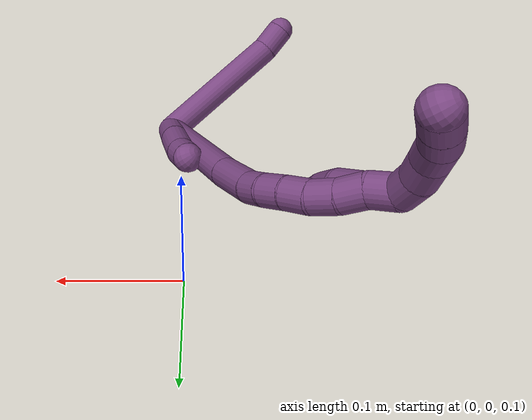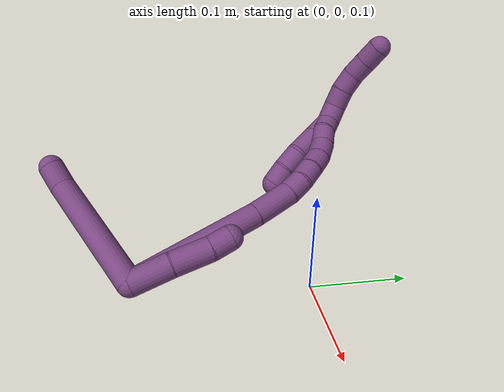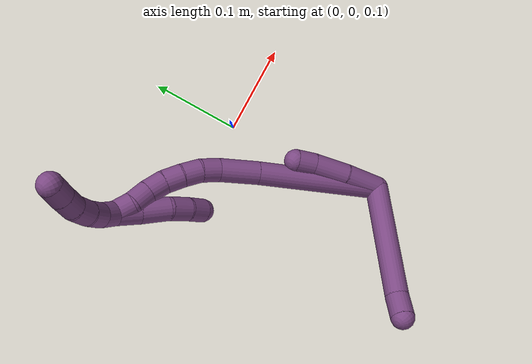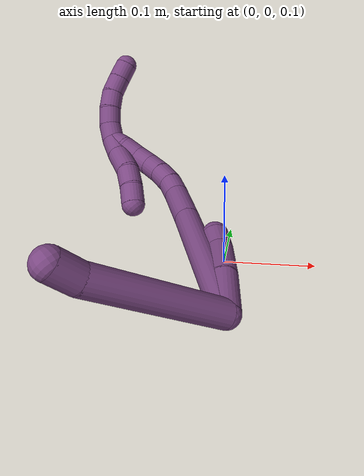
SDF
<sdf version="1.7">
 <world name="default">
  <model name="20">
   <static>0</static>
   <link name="20">
    <collision name="collision-cylinder-e_1_2_8">
     <pose>-0.015778 -0.04536 0.040289 0.844539 -0.254429 -0.114809</pose>
     <geometry><cylinder><radius>0.0125</radius><length>0.125375</length></cylinder></geometry>
     <surface>
      <friction><ode><mu>1.16</mu><mu2>1.16</mu2><slip1>0</slip1><slip2>0</slip2></ode></friction>
      <contact><ode><kp>1e+06</kp><kd>1</kd><max_vel>0</max_vel><min_depth>0.001</min_depth></ode></contact>
     </surface>
    </collision>
    <visual name="visual-cylinder-e_1_2_8">
     <pose>-0.015778 -0.04536 0.040289 0.844539 -0.254429 -0.114809</pose>
     <geometry><cylinder><radius>0.0125</radius><length>0.125375</length></cylinder></geometry>
     <material><ambient>0.478431 0.278431 0.509804 1</ambient></material>
    </visual>
    <collision name="collision-cylinder-e_2_8_6">
     <pose>-0.032081 -0.099523 0.089171 0.797456 -0.042634 -0.017964</pose>
     <geometry><cylinder><radius>0.0125</radius><length>0.024625</length></cylinder></geometry>
     <surface>
      <friction><ode><mu>1.16</mu><mu2>1.16</mu2><slip1>0</slip1><slip2>0</slip2></ode></friction>
      <contact><ode><kp>1e+06</kp><kd>1</kd><max_vel>0</max_vel><min_depth>0.001</min_depth></ode></contact>
     </surface>
    </collision>
    <visual name="visual-cylinder-e_2_8_6">
     <pose>-0.032081 -0.099523 0.089171 0.797456 -0.042634 -0.017964</pose>
     <geometry><cylinder><radius>0.0125</radius><length>0.024625</length></cylinder></geometry>
     <material><ambient>0.478431 0.278431 0.509804 1</ambient></material>
    </visual>
    <collision name="collision-cylinder-e_1_2_9">
     <pose>0.004118 0.015977 0.012022 -0.925754 0.203104 -0.101619</pose>
     <geometry><cylinder><radius>0.0125</radius><length>0.040829</length></cylinder></geometry>
     <surface>
      <friction><ode><mu>1.16</mu><mu2>1.16</mu2><slip1>0</slip1><slip2>0</slip2></ode></friction>
      <contact><ode><kp>1e+06</kp><kd>1</kd><max_vel>0</max_vel><min_depth>0.001</min_depth></ode></contact>
     </surface>
    </collision>
    <visual name="visual-cylinder-e_1_2_9">
     <pose>0.004118 0.015977 0.012022 -0.925754 0.203104 -0.101619</pose>
     <geometry><cylinder><radius>0.0125</radius><length>0.040829</length></cylinder></geometry>
     <material><ambient>0.478431 0.278431 0.509804 1</ambient></material>
    </visual>
    <collision name="collision-cylinder-e_2_9_10">
     <pose>0.010261 0.047518 0.035054 -0.955053 0.105814 -0.054793</pose>
     <geometry><cylinder><radius>0.0125</radius><length>0.038344</length></cylinder></geometry>
     <surface>
      <friction><ode><mu>1.16</mu><mu2>1.16</mu2><slip1>0</slip1><slip2>0</slip2></ode></friction>
      <contact><ode><kp>1e+06</kp><kd>1</kd><max_vel>0</max_vel><min_depth>0.001</min_depth></ode></contact>
     </surface>
    </collision>
    <visual name="visual-cylinder-e_2_9_10">
     <pose>0.010261 0.047518 0.035054 -0.955053 0.105814 -0.054793</pose>
     <geometry><cylinder><radius>0.0125</radius><length>0.038344</length></cylinder></geometry>
     <material><ambient>0.478431 0.278431 0.509804 1</ambient></material>
    </visual>
    <collision name="collision-cylinder-e_3_10_5">
     <pose>0.013167 0.070641 0.053173 -0.816179 0.084807 -0.036685</pose>
     <geometry><cylinder><radius>0.0125</radius><length>0.020827</length></cylinder></geometry>
     <surface>
      <friction><ode><mu>1.16</mu><mu2>1.16</mu2><slip1>0</slip1><slip2>0</slip2></ode></friction>
      <contact><ode><kp>1e+06</kp><kd>1</kd><max_vel>0</max_vel><min_depth>0.001</min_depth></ode></contact>
     </surface>
    </collision>
    <visual name="visual-cylinder-e_3_10_5">
     <pose>0.013167 0.070641 0.053173 -0.816179 0.084807 -0.036685</pose>
     <geometry><cylinder><radius>0.0125</radius><length>0.020827</length></cylinder></geometry>
     <material><ambient>0.478431 0.278431 0.509804 1</ambient></material>
    </visual>
    <collision name="collision-cylinder-e_1_2_11">
     <pose>-0.001407 0.049886 0.046693 -0.818447 -0.020585 0.008928</pose>
     <geometry><cylinder><radius>0.0125</radius><length>0.136687</length></cylinder></geometry>
     <surface>
      <friction><ode><mu>1.16</mu><mu2>1.16</mu2><slip1>0</slip1><slip2>0</slip2></ode></friction>
      <contact><ode><kp>1e+06</kp><kd>1</kd><max_vel>0</max_vel><min_depth>0.001</min_depth></ode></contact>
     </surface>
    </collision>
    <visual name="visual-cylinder-e_1_2_11">
     <pose>-0.001407 0.049886 0.046693 -0.818447 -0.020585 0.008928</pose>
     <geometry><cylinder><radius>0.0125</radius><length>0.136687</length></cylinder></geometry>
     <material><ambient>0.478431 0.278431 0.509804 1</ambient></material>
    </visual>
    <collision name="collision-cylinder-e_2_11_12">
     <pose>-0.003062 0.114515 0.109131 -0.752562 -0.01153 0.004556</pose>
     <geometry><cylinder><radius>0.0125</radius><length>0.043142</length></cylinder></geometry>
     <surface>
      <friction><ode><mu>1.16</mu><mu2>1.16</mu2><slip1>0</slip1><slip2>0</slip2></ode></friction>
      <contact><ode><kp>1e+06</kp><kd>1</kd><max_vel>0</max_vel><min_depth>0.001</min_depth></ode></contact>
     </surface>
    </collision>
    <visual name="visual-cylinder-e_2_11_12">
     <pose>-0.003062 0.114515 0.109131 -0.752562 -0.01153 0.004556</pose>
     <geometry><cylinder><radius>0.0125</radius><length>0.043142</length></cylinder></geometry>
     <material><ambient>0.478431 0.278431 0.509804 1</ambient></material>
    </visual>
    <collision name="collision-cylinder-e_3_12_13">
     <pose>-0.003142 0.134701 0.133352 -0.57081 0.016802 -0.00493</pose>
     <geometry><cylinder><radius>0.0125</radius><length>0.020151</length></cylinder></geometry>
     <surface>
      <friction><ode><mu>1.16</mu><mu2>1.16</mu2><slip1>0</slip1><slip2>0</slip2></ode></friction>
      <contact><ode><kp>1e+06</kp><kd>1</kd><max_vel>0</max_vel><min_depth>0.001</min_depth></ode></contact>
     </surface>
    </collision>
    <visual name="visual-cylinder-e_3_12_13">
     <pose>-0.003142 0.134701 0.133352 -0.57081 0.016802 -0.00493</pose>
     <geometry><cylinder><radius>0.0125</radius><length>0.020151</length></cylinder></geometry>
     <material><ambient>0.478431 0.278431 0.509804 1</ambient></material>
    </visual>
    <collision name="collision-cylinder-e_4_13_14">
     <pose>-0.004628 0.14438 0.150738 -0.443787 -0.166304 0.037602</pose>
     <geometry><cylinder><radius>0.0125</radius><length>0.020004</length></cylinder></geometry>
     <surface>
      <friction><ode><mu>1.16</mu><mu2>1.16</mu2><slip1>0</slip1><slip2>0</slip2></ode></friction>
      <contact><ode><kp>1e+06</kp><kd>1</kd><max_vel>0</max_vel><min_depth>0.001</min_depth></ode></contact>
     </surface>
    </collision>
    <visual name="visual-cylinder-e_4_13_14">
     <pose>-0.004628 0.14438 0.150738 -0.443787 -0.166304 0.037602</pose>
     <geometry><cylinder><radius>0.0125</radius><length>0.020004</length></cylinder></geometry>
     <material><ambient>0.478431 0.278431 0.509804 1</ambient></material>
    </visual>
    <collision name="collision-cylinder-e_5_14_15">
     <pose>-0.009044 0.152616 0.168392 -0.429065 -0.279479 0.061275</pose>
     <geometry><cylinder><radius>0.0125</radius><length>0.020012</length></cylinder></geometry>
     <surface>
      <friction><ode><mu>1.16</mu><mu2>1.16</mu2><slip1>0</slip1><slip2>0</slip2></ode></friction>
      <contact><ode><kp>1e+06</kp><kd>1</kd><max_vel>0</max_vel><min_depth>0.001</min_depth></ode></contact>
     </surface>
    </collision>
    <visual name="visual-cylinder-e_5_14_15">
     <pose>-0.009044 0.152616 0.168392 -0.429065 -0.279479 0.061275</pose>
     <geometry><cylinder><radius>0.0125</radius><length>0.020012</length></cylinder></geometry>
     <material><ambient>0.478431 0.278431 0.509804 1</ambient></material>
    </visual>
    <collision name="collision-cylinder-e_6_15_16">
     <pose>-0.014741 0.158536 0.186503 -0.202062 -0.29809 0.030443</pose>
     <geometry><cylinder><radius>0.0125</radius><length>0.020001</length></cylinder></geometry>
     <surface>
      <friction><ode><mu>1.16</mu><mu2>1.16</mu2><slip1>0</slip1><slip2>0</slip2></ode></friction>
      <contact><ode><kp>1e+06</kp><kd>1</kd><max_vel>0</max_vel><min_depth>0.001</min_depth></ode></contact>
     </surface>
    </collision>
    <visual name="visual-cylinder-e_6_15_16">
     <pose>-0.014741 0.158536 0.186503 -0.202062 -0.29809 0.030443</pose>
     <geometry><cylinder><radius>0.0125</radius><length>0.020001</length></cylinder></geometry>
     <material><ambient>0.478431 0.278431 0.509804 1</ambient></material>
    </visual>
    <collision name="collision-cylinder-e_7_16_17">
     <pose>-0.020008 0.160658 0.205592 -0.020952 -0.235138 0.002475</pose>
     <geometry><cylinder><radius>0.0125</radius><length>0.020002</length></cylinder></geometry>
     <surface>
      <friction><ode><mu>1.16</mu><mu2>1.16</mu2><slip1>0</slip1><slip2>0</slip2></ode></friction>
      <contact><ode><kp>1e+06</kp><kd>1</kd><max_vel>0</max_vel><min_depth>0.001</min_depth></ode></contact>
     </surface>
    </collision>
    <visual name="visual-cylinder-e_7_16_17">
     <pose>-0.020008 0.160658 0.205592 -0.020952 -0.235138 0.002475</pose>
     <geometry><cylinder><radius>0.0125</radius><length>0.020002</length></cylinder></geometry>
     <material><ambient>0.478431 0.278431 0.509804 1</ambient></material>
    </visual>
    <collision name="collision-cylinder-e_8_17_1">
     <pose>-0.025946 0.163674 0.224208 -0.306229 -0.369019 0.057587</pose>
     <geometry><cylinder><radius>0.0125</radius><length>0.020001</length></cylinder></geometry>
     <surface>
      <friction><ode><mu>1.16</mu><mu2>1.16</mu2><slip1>0</slip1><slip2>0</slip2></ode></friction>
      <contact><ode><kp>1e+06</kp><kd>1</kd><max_vel>0</max_vel><min_depth>0.001</min_depth></ode></contact>
     </surface>
    </collision>
    <visual name="visual-cylinder-e_8_17_1">
     <pose>-0.025946 0.163674 0.224208 -0.306229 -0.369019 0.057587</pose>
     <geometry><cylinder><radius>0.0125</radius><length>0.020001</length></cylinder></geometry>
     <material><ambient>0.478431 0.278431 0.509804 1</ambient></material>
    </visual>
    <collision name="collision-cylinder-e_1_1_18">
     <pose>-0.025422 0.167871 0.242103 -0.152693 0.425862 -0.033075</pose>
     <geometry><cylinder><radius>0.0125</radius><length>0.02</length></cylinder></geometry>
     <surface>
      <friction><ode><mu>1.16</mu><mu2>1.16</mu2><slip1>0</slip1><slip2>0</slip2></ode></friction>
      <contact><ode><kp>1e+06</kp><kd>1</kd><max_vel>0</max_vel><min_depth>0.001</min_depth></ode></contact>
     </surface>
    </collision>
    <visual name="visual-cylinder-e_1_1_18">
     <pose>-0.025422 0.167871 0.242103 -0.152693 0.425862 -0.033075</pose>
     <geometry><cylinder><radius>0.0125</radius><length>0.02</length></cylinder></geometry>
     <material><ambient>0.478431 0.278431 0.509804 1</ambient></material>
    </visual>
    <collision name="collision-cylinder-e_2_18_19">
     <pose>-0.015094 0.170358 0.258874 -0.140939 0.66835 -0.049005</pose>
     <geometry><cylinder><radius>0.0125</radius><length>0.02</length></cylinder></geometry>
     <surface>
      <friction><ode><mu>1.16</mu><mu2>1.16</mu2><slip1>0</slip1><slip2>0</slip2></ode></friction>
      <contact><ode><kp>1e+06</kp><kd>1</kd><max_vel>0</max_vel><min_depth>0.001</min_depth></ode></contact>
     </surface>
    </collision>
    <visual name="visual-cylinder-e_2_18_19">
     <pose>-0.015094 0.170358 0.258874 -0.140939 0.66835 -0.049005</pose>
     <geometry><cylinder><radius>0.0125</radius><length>0.02</length></cylinder></geometry>
     <material><ambient>0.478431 0.278431 0.509804 1</ambient></material>
    </visual>
    <collision name="collision-cylinder-e_3_19_20">
     <pose>-0.002241 0.174193 0.27359 -0.374824 0.72823 -0.144294</pose>
     <geometry><cylinder><radius>0.0125</radius><length>0.02</length></cylinder></geometry>
     <surface>
      <friction><ode><mu>1.16</mu><mu2>1.16</mu2><slip1>0</slip1><slip2>0</slip2></ode></friction>
      <contact><ode><kp>1e+06</kp><kd>1</kd><max_vel>0</max_vel><min_depth>0.001</min_depth></ode></contact>
     </surface>
    </collision>
    <visual name="visual-cylinder-e_3_19_20">
     <pose>-0.002241 0.174193 0.27359 -0.374824 0.72823 -0.144294</pose>
     <geometry><cylinder><radius>0.0125</radius><length>0.02</length></cylinder></geometry>
     <material><ambient>0.478431 0.278431 0.509804 1</ambient></material>
    </visual>
    <collision name="collision-cylinder-e_4_20_21">
     <pose>0.012369 0.18033 0.285549 -0.59659 0.919794 -0.302269</pose>
     <geometry><cylinder><radius>0.0125</radius><length>0.02</length></cylinder></geometry>
     <surface>
      <friction><ode><mu>1.16</mu><mu2>1.16</mu2><slip1>0</slip1><slip2>0</slip2></ode></friction>
      <contact><ode><kp>1e+06</kp><kd>1</kd><max_vel>0</max_vel><min_depth>0.001</min_depth></ode></contact>
     </surface>
    </collision>
    <visual name="visual-cylinder-e_4_20_21">
     <pose>0.012369 0.18033 0.285549 -0.59659 0.919794 -0.302269</pose>
     <geometry><cylinder><radius>0.0125</radius><length>0.02</length></cylinder></geometry>
     <material><ambient>0.478431 0.278431 0.509804 1</ambient></material>
    </visual>
    <collision name="collision-cylinder-e_5_21_4">
     <pose>0.028576 0.187008 0.295164 -0.618179 0.970659 -0.333694</pose>
     <geometry><cylinder><radius>0.0125</radius><length>0.02</length></cylinder></geometry>
     <surface>
      <friction><ode><mu>1.16</mu><mu2>1.16</mu2><slip1>0</slip1><slip2>0</slip2></ode></friction>
      <contact><ode><kp>1e+06</kp><kd>1</kd><max_vel>0</max_vel><min_depth>0.001</min_depth></ode></contact>
     </surface>
    </collision>
    <visual name="visual-cylinder-e_5_21_4">
     <pose>0.028576 0.187008 0.295164 -0.618179 0.970659 -0.333694</pose>
     <geometry><cylinder><radius>0.0125</radius><length>0.02</length></cylinder></geometry>
     <material><ambient>0.478431 0.278431 0.509804 1</ambient></material>
    </visual>
    <collision name="collision-cylinder-e_1_1_22">
     <pose>-0.030412 0.160032 0.222083 2.61177 -0.06717 -0.246436</pose>
     <geometry><cylinder><radius>0.0125</radius><length>0.025598</length></cylinder></geometry>
     <surface>
      <friction><ode><mu>1.16</mu><mu2>1.16</mu2><slip1>0</slip1><slip2>0</slip2></ode></friction>
      <contact><ode><kp>1e+06</kp><kd>1</kd><max_vel>0</max_vel><min_depth>0.001</min_depth></ode></contact>
     </surface>
    </collision>
    <visual name="visual-cylinder-e_1_1_22">
     <pose>-0.030412 0.160032 0.222083 2.61177 -0.06717 -0.246436</pose>
     <geometry><cylinder><radius>0.0125</radius><length>0.025598</length></cylinder></geometry>
     <material><ambient>0.478431 0.278431 0.509804 1</ambient></material>
    </visual>
    <collision name="collision-cylinder-e_2_22_23">
     <pose>-0.030829 0.145541 0.197744 2.59864 0.028393 0.101922</pose>
     <geometry><cylinder><radius>0.0125</radius><length>0.031124</length></cylinder></geometry>
     <surface>
      <friction><ode><mu>1.16</mu><mu2>1.16</mu2><slip1>0</slip1><slip2>0</slip2></ode></friction>
      <contact><ode><kp>1e+06</kp><kd>1</kd><max_vel>0</max_vel><min_depth>0.001</min_depth></ode></contact>
     </surface>
    </collision>
    <visual name="visual-cylinder-e_2_22_23">
     <pose>-0.030829 0.145541 0.197744 2.59864 0.028393 0.101922</pose>
     <geometry><cylinder><radius>0.0125</radius><length>0.031124</length></cylinder></geometry>
     <material><ambient>0.478431 0.278431 0.509804 1</ambient></material>
    </visual>
    <collision name="collision-cylinder-e_3_23_24">
     <pose>-0.033231 0.132534 0.17482 2.66413 -0.257139 -0.976608</pose>
     <geometry><cylinder><radius>0.0125</radius><length>0.022365</length></cylinder></geometry>
     <surface>
      <friction><ode><mu>1.16</mu><mu2>1.16</mu2><slip1>0</slip1><slip2>0</slip2></ode></friction>
      <contact><ode><kp>1e+06</kp><kd>1</kd><max_vel>0</max_vel><min_depth>0.001</min_depth></ode></contact>
     </surface>
    </collision>
    <visual name="visual-cylinder-e_3_23_24">
     <pose>-0.033231 0.132534 0.17482 2.66413 -0.257139 -0.976608</pose>
     <geometry><cylinder><radius>0.0125</radius><length>0.022365</length></cylinder></geometry>
     <material><ambient>0.478431 0.278431 0.509804 1</ambient></material>
    </visual>
    <collision name="collision-cylinder-e_4_24_3">
     <pose>-0.040255 0.123865 0.156373 2.74539 -0.411228 -1.60904</pose>
     <geometry><cylinder><radius>0.0125</radius><length>0.020913</length></cylinder></geometry>
     <surface>
      <friction><ode><mu>1.16</mu><mu2>1.16</mu2><slip1>0</slip1><slip2>0</slip2></ode></friction>
      <contact><ode><kp>1e+06</kp><kd>1</kd><max_vel>0</max_vel><min_depth>0.001</min_depth></ode></contact>
     </surface>
    </collision>
    <visual name="visual-cylinder-e_4_24_3">
     <pose>-0.040255 0.123865 0.156373 2.74539 -0.411228 -1.60904</pose>
     <geometry><cylinder><radius>0.0125</radius><length>0.020913</length></cylinder></geometry>
     <material><ambient>0.478431 0.278431 0.509804 1</ambient></material>
    </visual>
    <collision name="collision-sphere-3">
     <pose>-0.044435 0.120167 0.147531 0 -0 0</pose>
     <geometry><sphere><radius>0.0125</radius></sphere></geometry>
     <surface>
      <friction><ode><mu>1.16</mu><mu2>1.16</mu2><slip1>0</slip1><slip2>0</slip2></ode></friction>
      <contact><ode><kp>1e+06</kp><kd>1</kd><max_vel>0</max_vel><min_depth>0.001</min_depth></ode></contact>
     </surface>
    </collision>
    <visual name="visual-sphere-3">
     <pose>-0.044435 0.120167 0.147531 0 -0 0</pose>
     <geometry><sphere><radius>0.0125</radius></sphere></geometry>
     <material><ambient>0.478431 0.278431 0.509804 1</ambient></material>
    </visual>
    <collision name="collision-sphere-24">
     <pose>-0.036075 0.127564 0.165215 0 -0 0</pose>
     <geometry><sphere><radius>0.0125</radius></sphere></geometry>
     <surface>
      <friction><ode><mu>1.16</mu><mu2>1.16</mu2><slip1>0</slip1><slip2>0</slip2></ode></friction>
      <contact><ode><kp>1e+06</kp><kd>1</kd><max_vel>0</max_vel><min_depth>0.001</min_depth></ode></contact>
     </surface>
    </collision>
    <visual name="visual-sphere-24">
     <pose>-0.036075 0.127564 0.165215 0 -0 0</pose>
     <geometry><sphere><radius>0.0125</radius></sphere></geometry>
     <material><ambient>0.478431 0.278431 0.509804 1</ambient></material>
    </visual>
    <collision name="collision-sphere-23">
     <pose>-0.030387 0.137504 0.184426 0 -0 0</pose>
     <geometry><sphere><radius>0.0125</radius></sphere></geometry>
     <surface>
      <friction><ode><mu>1.16</mu><mu2>1.16</mu2><slip1>0</slip1><slip2>0</slip2></ode></friction>
      <contact><ode><kp>1e+06</kp><kd>1</kd><max_vel>0</max_vel><min_depth>0.001</min_depth></ode></contact>
     </surface>
    </collision>
    <visual name="visual-sphere-23">
     <pose>-0.030387 0.137504 0.184426 0 -0 0</pose>
     <geometry><sphere><radius>0.0125</radius></sphere></geometry>
     <material><ambient>0.478431 0.278431 0.509804 1</ambient></material>
    </visual>
    <collision name="collision-sphere-22">
     <pose>-0.031271 0.153578 0.211063 0 -0 0</pose>
     <geometry><sphere><radius>0.0125</radius></sphere></geometry>
     <surface>
      <friction><ode><mu>1.16</mu><mu2>1.16</mu2><slip1>0</slip1><slip2>0</slip2></ode></friction>
      <contact><ode><kp>1e+06</kp><kd>1</kd><max_vel>0</max_vel><min_depth>0.001</min_depth></ode></contact>
     </surface>
    </collision>
    <visual name="visual-sphere-22">
     <pose>-0.031271 0.153578 0.211063 0 -0 0</pose>
     <geometry><sphere><radius>0.0125</radius></sphere></geometry>
     <material><ambient>0.478431 0.278431 0.509804 1</ambient></material>
    </visual>
    <collision name="collision-sphere-4">
     <pose>0.036829 0.190281 0.299766 0 -0 0</pose>
     <geometry><sphere><radius>0.0125</radius></sphere></geometry>
     <surface>
      <friction><ode><mu>1.16</mu><mu2>1.16</mu2><slip1>0</slip1><slip2>0</slip2></ode></friction>
      <contact><ode><kp>1e+06</kp><kd>1</kd><max_vel>0</max_vel><min_depth>0.001</min_depth></ode></contact>
     </surface>
    </collision>
    <visual name="visual-sphere-4">
     <pose>0.036829 0.190281 0.299766 0 -0 0</pose>
     <geometry><sphere><radius>0.0125</radius></sphere></geometry>
     <material><ambient>0.478431 0.278431 0.509804 1</ambient></material>
    </visual>
    <collision name="collision-sphere-21">
     <pose>0.020324 0.183735 0.290562 0 -0 0</pose>
     <geometry><sphere><radius>0.0125</radius></sphere></geometry>
     <surface>
      <friction><ode><mu>1.16</mu><mu2>1.16</mu2><slip1>0</slip1><slip2>0</slip2></ode></friction>
      <contact><ode><kp>1e+06</kp><kd>1</kd><max_vel>0</max_vel><min_depth>0.001</min_depth></ode></contact>
     </surface>
    </collision>
    <visual name="visual-sphere-21">
     <pose>0.020324 0.183735 0.290562 0 -0 0</pose>
     <geometry><sphere><radius>0.0125</radius></sphere></geometry>
     <material><ambient>0.478431 0.278431 0.509804 1</ambient></material>
    </visual>
    <collision name="collision-sphere-20">
     <pose>0.004414 0.176926 0.280536 0 -0 0</pose>
     <geometry><sphere><radius>0.0125</radius></sphere></geometry>
     <surface>
      <friction><ode><mu>1.16</mu><mu2>1.16</mu2><slip1>0</slip1><slip2>0</slip2></ode></friction>
      <contact><ode><kp>1e+06</kp><kd>1</kd><max_vel>0</max_vel><min_depth>0.001</min_depth></ode></contact>
     </surface>
    </collision>
    <visual name="visual-sphere-20">
     <pose>0.004414 0.176926 0.280536 0 -0 0</pose>
     <geometry><sphere><radius>0.0125</radius></sphere></geometry>
     <material><ambient>0.478431 0.278431 0.509804 1</ambient></material>
    </visual>
    <collision name="collision-sphere-5">
     <pose>0.01405 0.0782 0.060281 0 -0 0</pose>
     <geometry><sphere><radius>0.0125</radius></sphere></geometry>
     <surface>
      <friction><ode><mu>1.16</mu><mu2>1.16</mu2><slip1>0</slip1><slip2>0</slip2></ode></friction>
      <contact><ode><kp>1e+06</kp><kd>1</kd><max_vel>0</max_vel><min_depth>0.001</min_depth></ode></contact>
     </surface>
    </collision>
    <visual name="visual-sphere-5">
     <pose>0.01405 0.0782 0.060281 0 -0 0</pose>
     <geometry><sphere><radius>0.0125</radius></sphere></geometry>
     <material><ambient>0.478431 0.278431 0.509804 1</ambient></material>
    </visual>
    <collision name="collision-sphere-10">
     <pose>0.012285 0.063082 0.046066 0 -0 0</pose>
     <geometry><sphere><radius>0.0125</radius></sphere></geometry>
     <surface>
      <friction><ode><mu>1.16</mu><mu2>1.16</mu2><slip1>0</slip1><slip2>0</slip2></ode></friction>
      <contact><ode><kp>1e+06</kp><kd>1</kd><max_vel>0</max_vel><min_depth>0.001</min_depth></ode></contact>
     </surface>
    </collision>
    <visual name="visual-sphere-10">
     <pose>0.012285 0.063082 0.046066 0 -0 0</pose>
     <geometry><sphere><radius>0.0125</radius></sphere></geometry>
     <material><ambient>0.478431 0.278431 0.509804 1</ambient></material>
    </visual>
    <collision name="collision-sphere-6">
     <pose>-0.032605 -0.108326 0.097764 0 -0 0</pose>
     <geometry><sphere><radius>0.0125</radius></sphere></geometry>
     <surface>
      <friction><ode><mu>1.16</mu><mu2>1.16</mu2><slip1>0</slip1><slip2>0</slip2></ode></friction>
      <contact><ode><kp>1e+06</kp><kd>1</kd><max_vel>0</max_vel><min_depth>0.001</min_depth></ode></contact>
     </surface>
    </collision>
    <visual name="visual-sphere-6">
     <pose>-0.032605 -0.108326 0.097764 0 -0 0</pose>
     <geometry><sphere><radius>0.0125</radius></sphere></geometry>
     <material><ambient>0.478431 0.278431 0.509804 1</ambient></material>
    </visual>
    <collision name="collision-sphere-9">
     <pose>0.008236 0.031955 0.024043 0 -0 0</pose>
     <geometry><sphere><radius>0.0125</radius></sphere></geometry>
     <surface>
      <friction><ode><mu>1.16</mu><mu2>1.16</mu2><slip1>0</slip1><slip2>0</slip2></ode></friction>
      <contact><ode><kp>1e+06</kp><kd>1</kd><max_vel>0</max_vel><min_depth>0.001</min_depth></ode></contact>
     </surface>
    </collision>
    <visual name="visual-sphere-9">
     <pose>0.008236 0.031955 0.024043 0 -0 0</pose>
     <geometry><sphere><radius>0.0125</radius></sphere></geometry>
     <material><ambient>0.478431 0.278431 0.509804 1</ambient></material>
    </visual>
    <collision name="collision-sphere-2">
     <geometry><sphere><radius>0.0125</radius></sphere></geometry>
     <surface>
      <friction><ode><mu>1.16</mu><mu2>1.16</mu2><slip1>0</slip1><slip2>0</slip2></ode></friction>
      <contact><ode><kp>1e+06</kp><kd>1</kd><max_vel>0</max_vel><min_depth>0.001</min_depth></ode></contact>
     </surface>
    </collision>
    <visual name="visual-sphere-2">
     <geometry><sphere><radius>0.0125</radius></sphere></geometry>
     <material><ambient>0.478431 0.278431 0.509804 1</ambient></material>
    </visual>
    <collision name="collision-sphere-19">
     <pose>-0.008897 0.171461 0.266645 0 -0 0</pose>
     <geometry><sphere><radius>0.0125</radius></sphere></geometry>
     <surface>
      <friction><ode><mu>1.16</mu><mu2>1.16</mu2><slip1>0</slip1><slip2>0</slip2></ode></friction>
      <contact><ode><kp>1e+06</kp><kd>1</kd><max_vel>0</max_vel><min_depth>0.001</min_depth></ode></contact>
     </surface>
    </collision>
    <visual name="visual-sphere-19">
     <pose>-0.008897 0.171461 0.266645 0 -0 0</pose>
     <geometry><sphere><radius>0.0125</radius></sphere></geometry>
     <material><ambient>0.478431 0.278431 0.509804 1</ambient></material>
    </visual>
    <collision name="collision-sphere-8">
     <pose>-0.031556 -0.090721 0.080578 0 -0 0</pose>
     <geometry><sphere><radius>0.0125</radius></sphere></geometry>
     <surface>
      <friction><ode><mu>1.16</mu><mu2>1.16</mu2><slip1>0</slip1><slip2>0</slip2></ode></friction>
      <contact><ode><kp>1e+06</kp><kd>1</kd><max_vel>0</max_vel><min_depth>0.001</min_depth></ode></contact>
     </surface>
    </collision>
    <visual name="visual-sphere-8">
     <pose>-0.031556 -0.090721 0.080578 0 -0 0</pose>
     <geometry><sphere><radius>0.0125</radius></sphere></geometry>
     <material><ambient>0.478431 0.278431 0.509804 1</ambient></material>
    </visual>
    <collision name="collision-sphere-11">
     <pose>-0.002814 0.099772 0.093386 0 -0 0</pose>
     <geometry><sphere><radius>0.0125</radius></sphere></geometry>
     <surface>
      <friction><ode><mu>1.16</mu><mu2>1.16</mu2><slip1>0</slip1><slip2>0</slip2></ode></friction>
      <contact><ode><kp>1e+06</kp><kd>1</kd><max_vel>0</max_vel><min_depth>0.001</min_depth></ode></contact>
     </surface>
    </collision>
    <visual name="visual-sphere-11">
     <pose>-0.002814 0.099772 0.093386 0 -0 0</pose>
     <geometry><sphere><radius>0.0125</radius></sphere></geometry>
     <material><ambient>0.478431 0.278431 0.509804 1</ambient></material>
    </visual>
    <collision name="collision-sphere-12">
     <pose>-0.003311 0.129258 0.124875 0 -0 0</pose>
     <geometry><sphere><radius>0.0125</radius></sphere></geometry>
     <surface>
      <friction><ode><mu>1.16</mu><mu2>1.16</mu2><slip1>0</slip1><slip2>0</slip2></ode></friction>
      <contact><ode><kp>1e+06</kp><kd>1</kd><max_vel>0</max_vel><min_depth>0.001</min_depth></ode></contact>
     </surface>
    </collision>
    <visual name="visual-sphere-12">
     <pose>-0.003311 0.129258 0.124875 0 -0 0</pose>
     <geometry><sphere><radius>0.0125</radius></sphere></geometry>
     <material><ambient>0.478431 0.278431 0.509804 1</ambient></material>
    </visual>
    <collision name="collision-sphere-13">
     <pose>-0.002972 0.140144 0.141829 0 -0 0</pose>
     <geometry><sphere><radius>0.0125</radius></sphere></geometry>
     <surface>
      <friction><ode><mu>1.16</mu><mu2>1.16</mu2><slip1>0</slip1><slip2>0</slip2></ode></friction>
      <contact><ode><kp>1e+06</kp><kd>1</kd><max_vel>0</max_vel><min_depth>0.001</min_depth></ode></contact>
     </surface>
    </collision>
    <visual name="visual-sphere-13">
     <pose>-0.002972 0.140144 0.141829 0 -0 0</pose>
     <geometry><sphere><radius>0.0125</radius></sphere></geometry>
     <material><ambient>0.478431 0.278431 0.509804 1</ambient></material>
    </visual>
    <collision name="collision-sphere-14">
     <pose>-0.006284 0.148615 0.159646 0 -0 0</pose>
     <geometry><sphere><radius>0.0125</radius></sphere></geometry>
     <surface>
      <friction><ode><mu>1.16</mu><mu2>1.16</mu2><slip1>0</slip1><slip2>0</slip2></ode></friction>
      <contact><ode><kp>1e+06</kp><kd>1</kd><max_vel>0</max_vel><min_depth>0.001</min_depth></ode></contact>
     </surface>
    </collision>
    <visual name="visual-sphere-14">
     <pose>-0.006284 0.148615 0.159646 0 -0 0</pose>
     <geometry><sphere><radius>0.0125</radius></sphere></geometry>
     <material><ambient>0.478431 0.278431 0.509804 1</ambient></material>
    </visual>
    <collision name="collision-sphere-15">
     <pose>-0.011804 0.156617 0.177138 0 -0 0</pose>
     <geometry><sphere><radius>0.0125</radius></sphere></geometry>
     <surface>
      <friction><ode><mu>1.16</mu><mu2>1.16</mu2><slip1>0</slip1><slip2>0</slip2></ode></friction>
      <contact><ode><kp>1e+06</kp><kd>1</kd><max_vel>0</max_vel><min_depth>0.001</min_depth></ode></contact>
     </surface>
    </collision>
    <visual name="visual-sphere-15">
     <pose>-0.011804 0.156617 0.177138 0 -0 0</pose>
     <geometry><sphere><radius>0.0125</radius></sphere></geometry>
     <material><ambient>0.478431 0.278431 0.509804 1</ambient></material>
    </visual>
    <collision name="collision-sphere-16">
     <pose>-0.017678 0.160454 0.195868 0 -0 0</pose>
     <geometry><sphere><radius>0.0125</radius></sphere></geometry>
     <surface>
      <friction><ode><mu>1.16</mu><mu2>1.16</mu2><slip1>0</slip1><slip2>0</slip2></ode></friction>
      <contact><ode><kp>1e+06</kp><kd>1</kd><max_vel>0</max_vel><min_depth>0.001</min_depth></ode></contact>
     </surface>
    </collision>
    <visual name="visual-sphere-16">
     <pose>-0.017678 0.160454 0.195868 0 -0 0</pose>
     <geometry><sphere><radius>0.0125</radius></sphere></geometry>
     <material><ambient>0.478431 0.278431 0.509804 1</ambient></material>
    </visual>
    <collision name="collision-sphere-17">
     <pose>-0.022338 0.160862 0.215315 0 -0 0</pose>
     <geometry><sphere><radius>0.0125</radius></sphere></geometry>
     <surface>
      <friction><ode><mu>1.16</mu><mu2>1.16</mu2><slip1>0</slip1><slip2>0</slip2></ode></friction>
      <contact><ode><kp>1e+06</kp><kd>1</kd><max_vel>0</max_vel><min_depth>0.001</min_depth></ode></contact>
     </surface>
    </collision>
    <visual name="visual-sphere-17">
     <pose>-0.022338 0.160862 0.215315 0 -0 0</pose>
     <geometry><sphere><radius>0.0125</radius></sphere></geometry>
     <material><ambient>0.478431 0.278431 0.509804 1</ambient></material>
    </visual>
    <collision name="collision-sphere-1">
     <pose>-0.029553 0.166486 0.233102 0 -0 0</pose>
     <geometry><sphere><radius>0.0125</radius></sphere></geometry>
     <surface>
      <friction><ode><mu>1.16</mu><mu2>1.16</mu2><slip1>0</slip1><slip2>0</slip2></ode></friction>
      <contact><ode><kp>1e+06</kp><kd>1</kd><max_vel>0</max_vel><min_depth>0.001</min_depth></ode></contact>
     </surface>
    </collision>
    <visual name="visual-sphere-1">
     <pose>-0.029553 0.166486 0.233102 0 -0 0</pose>
     <geometry><sphere><radius>0.0125</radius></sphere></geometry>
     <material><ambient>0.478431 0.278431 0.509804 1</ambient></material>
    </visual>
    <collision name="collision-sphere-18">
     <pose>-0.021291 0.169256 0.251104 0 -0 0</pose>
     <geometry><sphere><radius>0.0125</radius></sphere></geometry>
     <surface>
      <friction><ode><mu>1.16</mu><mu2>1.16</mu2><slip1>0</slip1><slip2>0</slip2></ode></friction>
      <contact><ode><kp>1e+06</kp><kd>1</kd><max_vel>0</max_vel><min_depth>0.001</min_depth></ode></contact>
     </surface>
    </collision>
    <visual name="visual-sphere-18">
     <pose>-0.021291 0.169256 0.251104 0 -0 0</pose>
     <geometry><sphere><radius>0.0125</radius></sphere></geometry>
     <material><ambient>0.478431 0.278431 0.509804 1</ambient></material>
    </visual>
    <inertial>
     <pose>-0.009556 0.076877 0.118406 0 -0 0</pose>
     <mass>0.75</mass>
     <inertia><ixx>0.000405</ixx><ixy>0</ixy><ixz>0</ixz><iyy>0.000278</iyy><iyz>0</iyz><izz>2e-05</izz></inertia>
    </inertial>
   </link>
   <pose>0.016862 -0.173772 0.135482 -0.388373 -0.769241 0.111496</pose>
  </model>
 </world>
</sdf>
